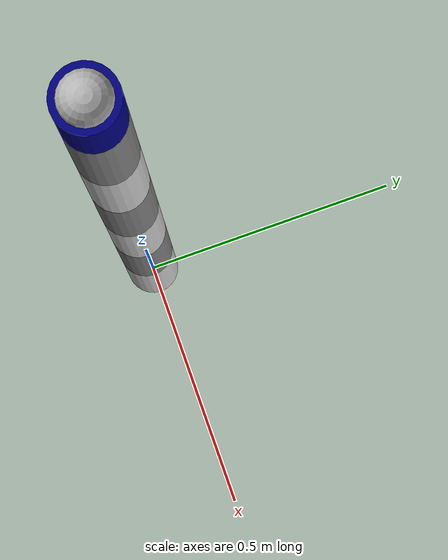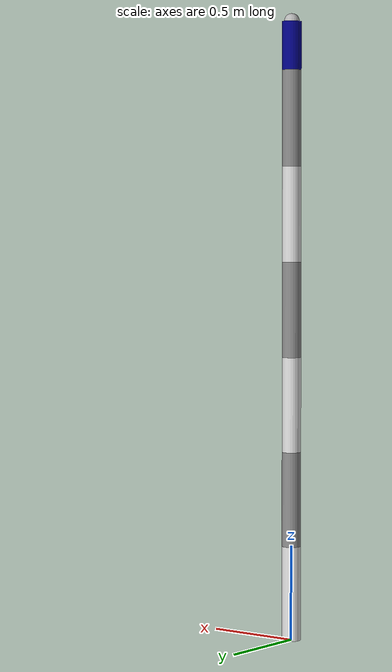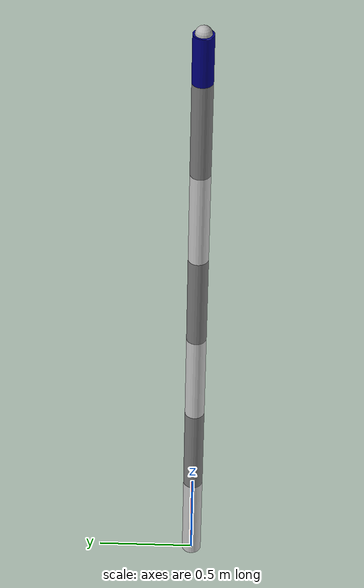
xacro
<?xml version="1.0"?>
<robot xmlns:xacro="http://www.ros.org/wiki/xacro" name="simple_robot">
    <xacro:arg name="initial_positions_file" default="initial_positions.yaml" />

    <!-- Import simple_robot urdf file -->
    <xacro:include filename="$(find simple_robot_description)/urdf/simple_robot.urdf.xacro" />

    <!-- Import control_xacro -->
    <xacro:include filename="simple_robot.ros2_control.xacro" />

    <xacro:simple_robot_ros2_control name="FakeSystem" initial_positions_file="$(arg initial_positions_file)"/>

</robot>

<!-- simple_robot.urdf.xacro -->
<robot xmlns:xacro="http://www.ros.org/wiki/xacro" name="simple_robot">

    <xacro:property name="PI" value="3.1415927"/>
    <xacro:include filename="$(find simple_robot_description)/urdf/simple_robot_description.xacro"/>
</robot>

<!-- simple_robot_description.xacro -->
<robot xmlns:xacro="http://www.ros.org/wiki/xacro" name="simple_robot">

    <xacro:macro name="cylindrical_link" params="name length radius mass color">
        <link name="${name}">
            <visual>
                <origin xyz="0 0 ${length / 2}" rpy="0 0 0"/>
                <geometry>
                    <cylinder length="${length}" radius="${radius}"/>
                </geometry>
                <material name="${color}">
                    <color rgba="${color} 1.0"/>
                </material>
            </visual>
            <collision>
                <origin xyz="0 0 ${length / 2}" rpy="0 0 0"/>
                <geometry>
                    <cylinder length="${length}" radius="${radius}"/>
                </geometry>
            </collision>
            <inertial>
                <origin xyz="0 0 ${length / 2}" rpy="0 0 0"/>
                <mass value="${mass}"/>
                <inertia ixx="${mass * (3 * radius ** 2 + length ** 2) / 12}"
                         ixy="0.0"
                         ixz="0.0"
                         iyy="${mass * (3 * radius ** 2 + length ** 2) / 12}"
                         iyz="0.0"
                         izz="${mass * radius ** 2 / 2}"/>
            </inertial>
        </link>
    </xacro:macro>

    <xacro:macro name="revolute_joint" params="name parent child axis xyz rpy lower upper effort velocity">
        <joint name="${name}" type="revolute">
            <origin xyz="${xyz}" rpy="${rpy}"/>
            <parent link="${parent}"/>
            <child link="${child}"/>
            <axis xyz="${axis}"/>
            <limit lower="${lower}" upper="${upper}" effort="${effort}" velocity="${velocity}"/>
        </joint>
    </xacro:macro>

    <xacro:property name="link_length" value="0.5"/>
    <xacro:property name="link_radius" value="0.05"/>
    <xacro:property name="link_mass" value="1.0"/>

    <!-- Define links -->
    <xacro:cylindrical_link name="base_link" length="${link_length}" radius="${link_radius}" mass="${link_mass}" color="0.8 0.8 0.8"/>
    <xacro:cylindrical_link name="link1" length="${link_length}" radius="${link_radius}" mass="${link_mass}" color="0.5 0.5 0.50"/>
    <xacro:cylindrical_link name="link2" length="${link_length}" radius="${link_radius}" mass="${link_mass}" color="0.8 0.8 0.8"/>
    <xacro:cylindrical_link name="link3" length="${link_length}" radius="${link_radius}" mass="${link_mass}" color="0.5 0.5 0.5"/>
    <xacro:cylindrical_link name="link4" length="${link_length}" radius="${link_radius}" mass="${link_mass}" color="0.8 0.8 0.8"/>
    <xacro:cylindrical_link name="link5" length="${link_length}" radius="${link_radius}" mass="${link_mass}" color="0.5 0.5 0.5"/>
    <xacro:cylindrical_link name="end_effector" length="${link_length/2}" radius="${link_radius}" mass="${link_mass}" color="0 0 0.5"/>

    <link name="link_tcp">
        <visual>
            <origin xyz="0.0 0.0 0.0" rpy="0.0 0.0 0.0"/>
                <geometry>
                    <sphere radius="0.04"/>
                </geometry>
        </visual>

        <collision>
            <origin xyz="0.0 0.0 0.0" rpy="0.0 0.0 0.0"/>
                <geometry>
                    <sphere radius="0.04"/>
                </geometry>
        </collision>
    </link>

    <!-- Define joints -->
    <xacro:revolute_joint name="joint1" parent="base_link" child="link1" axis="0 0 1" xyz="0 0 ${link_length}" rpy="0 0 0" lower="${-PI}" upper="${PI}" effort="10" velocity="1.0"/>
    <xacro:revolute_joint name="joint2" parent="link1" child="link2" axis="0 1 0" xyz="0 0 ${link_length}" rpy="0 0 0" lower="${-PI}" upper="${PI}" effort="10" velocity="1.0"/>
    <xacro:revolute_joint name="joint3" parent="link2" child="link3" axis="0 0 1" xyz="0 0 ${link_length}" rpy="0 0 0" lower="${-PI}" upper="${PI}" effort="10" velocity="1.0"/>
    <xacro:revolute_joint name="joint4" parent="link3" child="link4" axis="0 1 0" xyz="0 0 ${link_length}" rpy="0 0 0" lower="${-PI}" upper="${PI}" effort="10" velocity="1.0"/>
    <xacro:revolute_joint name="joint5" parent="link4" child="link5" axis="0 0 1" xyz="0 0 ${link_length}" rpy="0 0 0" lower="${-PI}" upper="${PI}" effort="10" velocity="1.0"/>
    <xacro:revolute_joint name="joint6" parent="link5" child="end_effector" axis="0 1 0" xyz="0 0 ${link_length}" rpy="0 0 0" lower="${-PI}" upper="${PI}" effort="10" velocity="1.0"/>

    <joint name="tcp_joint" type="fixed">
        <origin xyz="0.0 0.0 ${link_length/2}" rpy="0.0 0.0 0.0"/>
        <parent link="end_effector"/>
        <child link="link_tcp"/>
    </joint>
</robot>
